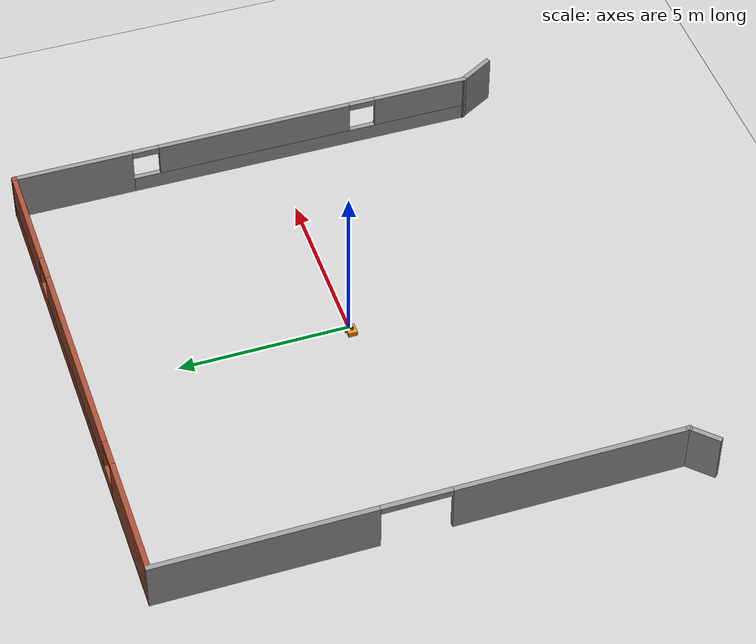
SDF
<sdf version="1.7">
 <world name="default">
  <light name="sun" type="directional">
   <pose>0 0 10 0 -0 0</pose>
   <diffuse>0.8 0.8 0.8 1</diffuse>
   <specular>0.2 0.2 0.2 1</specular>
   <attenuation>
    <range>1000</range>
    <constant>0.9</constant>
    <linear>0.01</linear>
    <quadratic>0.001</quadratic>
   </attenuation>
   <direction>-0.5 0.1 -0.9</direction>
   <spot><inner_angle>0</inner_angle><outer_angle>0</outer_angle><falloff>0</falloff></spot>
  </light>
  <model name="ground_plane">
   <static>1</static>
   <link name="link">
    <collision name="collision">
     <geometry><plane><normal>0 0 1</normal><size>100 100</size></plane></geometry>
     <surface>
      <contact><collide_bitmask>65535</collide_bitmask></contact>
      <friction><ode><mu>100</mu><mu2>50</mu2></ode></friction>
     </surface>
    </collision>
    <visual name="visual">
     <cast_shadows>0</cast_shadows>
     <geometry><plane><normal>0 0 1</normal><size>100 100</size></plane></geometry>
     <material>
      <script><uri>file://media/materials/scripts/gazebo.material</uri><name>Gazebo/Grey</name></script>
     </material>
    </visual>
   </link>
  </model>
  <gravity>0 0 -9.8</gravity>
  <magnetic_field>6e-06 2.3e-05 -4.2e-05</magnetic_field>
  <atmosphere type="adiabatic"/>
  <physics type="ode">
   <max_step_size>0.001</max_step_size>
   <real_time_factor>1</real_time_factor>
   <real_time_update_rate>1000</real_time_update_rate>
  </physics>
  <scene><ambient>0.4 0.4 0.4 1</ambient><background>0.7 0.7 0.7 1</background><shadows>1</shadows></scene>
  <spherical_coordinates>
   <surface_model>EARTH_WGS84</surface_model>
   <latitude_deg>0</latitude_deg>
   <longitude_deg>0</longitude_deg>
   <elevation>0</elevation>
   <heading_deg>0</heading_deg>
  </spherical_coordinates>
  <audio><device>default</device></audio>
  <model name="my_bot">
   <link name="base_link">
    <inertial>
     <pose>-0.067475 0 0.081098 0 -0 0</pose>
     <mass>0.61</mass>
     <inertia>
      <ixx>0.00561003</ixx>
      <ixy>0</ixy>
      <ixz>0.000453811</ixz>
      <iyy>0.00760348</iyy>
      <iyz>0</iyz>
      <izz>0.00797093</izz>
     </inertia>
    </inertial>
    <collision name="base_link_fixed_joint_lump__chassis_collision">
     <pose>-0.0585 0 0.059 0 -0 0</pose>
     <geometry><box><size>0.335 0.265 0.138</size></box></geometry>
    </collision>
    <collision name="base_link_fixed_joint_lump__caster_wheel_collision_1">
     <pose>-0.151 0 -0.023 0 -0 0</pose>
     <geometry><sphere><radius>0.01</radius></sphere></geometry>
     <surface><friction><ode><mu>0.001</mu><mu2>0.001</mu2></ode></friction></surface>
    </collision>
    <collision name="base_link_fixed_joint_lump__laser_frame_collision_2">
     <pose>-0.104 0 0.202 0 -0 0</pose>
     <geometry><cylinder><length>0.04</length><radius>0.05</radius></cylinder></geometry>
    </collision>
    <visual name="base_link_fixed_joint_lump__chassis_visual">
     <pose>-0.0585 0 0.059 0 -0 0</pose>
     <geometry><box><size>0.335 0.265 0.138</size></box></geometry>
     <material>
      <script><name>Gazebo/Orange</name><uri>file://media/materials/scripts/gazebo.material</uri></script>
     </material>
    </visual>
    <visual name="base_link_fixed_joint_lump__camera_link_visual_1">
     <pose>0.05 0 0.171 0 0.18 0</pose>
     <geometry><box><size>0.01 0.03 0.03</size></box></geometry>
     <material>
      <script><name>Gazebo/Black</name><uri>file://media/materials/scripts/gazebo.material</uri></script>
     </material>
    </visual>
    <visual name="base_link_fixed_joint_lump__camera_link_visual_2">
     <pose>0.041049 0 0.121808 0 0.18 0</pose>
     <geometry><cylinder><length>0.1</length><radius>0.002</radius></cylinder></geometry>
     <material>
      <script><name>Gazebo/Black</name><uri>file://media/materials/scripts/gazebo.material</uri></script>
     </material>
    </visual>
    <visual name="base_link_fixed_joint_lump__caster_wheel_visual_3">
     <pose>-0.151 0 -0.023 0 -0 0</pose>
     <geometry><sphere><radius>0.01</radius></sphere></geometry>
     <material>
      <script><name>Gazebo/White</name><uri>file://media/materials/scripts/gazebo.material</uri></script>
     </material>
    </visual>
    <visual name="base_link_fixed_joint_lump__face_link_visual_4">
     <pose>0.109 0.05 0.069 3.14159 1.57079 3.14159</pose>
     <geometry><cylinder><length>0.002</length><radius>0.01</radius></cylinder></geometry>
     <material>
      <script><name>Gazebo/Black</name><uri>file://media/materials/scripts/gazebo.material</uri></script>
     </material>
    </visual>
    <visual name="base_link_fixed_joint_lump__face_link_visual_5">
     <pose>0.109 -0.05 0.069 3.14159 1.57079 3.14159</pose>
     <geometry><cylinder><length>0.002</length><radius>0.01</radius></cylinder></geometry>
     <material>
      <script><name>Gazebo/Black</name><uri>file://media/materials/scripts/gazebo.material</uri></script>
     </material>
    </visual>
    <visual name="base_link_fixed_joint_lump__face_link_visual_6">
     <pose>0.098 0 0.059 0 1.5 0</pose>
     <geometry><cylinder><length>0.02</length><radius>0.05</radius></cylinder></geometry>
     <material>
      <script><name>Gazebo/Black</name><uri>file://media/materials/scripts/gazebo.material</uri></script>
     </material>
    </visual>
    <visual name="base_link_fixed_joint_lump__laser_frame_visual_7">
     <pose>-0.104 0 0.202 0 -0 0</pose>
     <geometry><cylinder><length>0.04</length><radius>0.05</radius></cylinder></geometry>
     <material>
      <script><name>Gazebo/Black</name><uri>file://media/materials/scripts/gazebo.material</uri></script>
     </material>
    </visual>
    <visual name="base_link_fixed_joint_lump__laser_frame_visual_8">
     <pose>-0.104 0 0.152 0 -0 0</pose>
     <geometry><cylinder><length>0.1</length><radius>0.01</radius></cylinder></geometry>
     <material>
      <script><name>Gazebo/Black</name><uri>file://media/materials/scripts/gazebo.material</uri></script>
     </material>
    </visual>
    <sensor name="camera" type="camera">
     <visualize>1</visualize>
     <update_rate>10</update_rate>
     <camera>
      <horizontal_fov>1.089</horizontal_fov>
      <image><format>R8G8B8</format><width>640</width><height>480</height></image>
      <clip><near>0.05</near><far>8</far></clip>
     </camera>
     <plugin name="camera_controller" filename="libgazebo_ros_camera.so">
      <frame_name>camera_link_optical</frame_name>
     </plugin>
     <pose>0.05 0 0.171 0 0.18 0</pose>
    </sensor>
    <sensor name="laser" type="ray">
     <visualize>0</visualize>
     <update_rate>10</update_rate>
     <ray>
      <scan>
       <horizontal>
        <samples>360</samples>
        <min_angle>-3.14</min_angle>
        <max_angle>3.14</max_angle>
        <resolution>1</resolution>
       </horizontal>
       <vertical><samples>1</samples><min_angle>0</min_angle><max_angle>0</max_angle></vertical>
      </scan>
      <range><min>0.3</min><max>12</max></range>
     </ray>
     <plugin name="laser_controller" filename="libgazebo_ros_ray_sensor.so">
      <ros><argument>~/out:=scan</argument></ros>
      <output_type>sensor_msgs/LaserScan</output_type>
      <frame_name>laser_frame</frame_name>
     </plugin>
     <pose>-0.104 0 0.202 0 -0 0</pose>
    </sensor>
   </link>
   <joint name="left_wheel_joint" type="revolute">
    <pose relative_to="base_link">0 0.1485 0 -1.5708 0 0</pose>
    <parent>base_link</parent>
    <child>left_wheel</child>
    <axis>
     <xyz>0 0 1</xyz>
     <limit><lower>-1e+16</lower><upper>1e+16</upper></limit>
     <dynamics><spring_reference>0</spring_reference><spring_stiffness>0</spring_stiffness></dynamics>
    </axis>
   </joint>
   <link name="left_wheel">
    <pose relative_to="left_wheel_joint">0 0 0 0 -0 0</pose>
    <inertial>
     <mass>0.05</mass>
     <inertia>
      <ixx>1.64292e-05</ixx>
      <ixy>0</ixy>
      <ixz>0</ixz>
      <iyy>1.64292e-05</iyy>
      <iyz>0</iyz>
      <izz>2.7225e-05</izz>
     </inertia>
    </inertial>
    <collision name="left_wheel_collision">
     <geometry><sphere><radius>0.033</radius></sphere></geometry>
    </collision>
    <visual name="left_wheel_visual">
     <geometry><cylinder><length>0.026</length><radius>0.033</radius></cylinder></geometry>
     <material>
      <script><name>Gazebo/Blue</name><uri>file://media/materials/scripts/gazebo.material</uri></script>
     </material>
    </visual>
   </link>
   <joint name="right_wheel_joint" type="revolute">
    <pose relative_to="base_link">0 -0.1485 0 1.5708 -0 0</pose>
    <parent>base_link</parent>
    <child>right_wheel</child>
    <axis>
     <xyz>0 0 -1</xyz>
     <limit><lower>-1e+16</lower><upper>1e+16</upper></limit>
     <dynamics><spring_reference>0</spring_reference><spring_stiffness>0</spring_stiffness></dynamics>
    </axis>
   </joint>
   <link name="right_wheel">
    <pose relative_to="right_wheel_joint">0 0 0 0 -0 0</pose>
    <inertial>
     <mass>0.05</mass>
     <inertia>
      <ixx>1.64292e-05</ixx>
      <ixy>0</ixy>
      <ixz>0</ixz>
      <iyy>1.64292e-05</iyy>
      <iyz>0</iyz>
      <izz>2.7225e-05</izz>
     </inertia>
    </inertial>
    <collision name="right_wheel_collision">
     <geometry><sphere><radius>0.033</radius></sphere></geometry>
    </collision>
    <visual name="right_wheel_visual">
     <geometry><cylinder><length>0.026</length><radius>0.033</radius></cylinder></geometry>
     <material>
      <script><name>Gazebo/Blue</name><uri>file://media/materials/scripts/gazebo.material</uri></script>
     </material>
    </visual>
   </link>
   <static>0</static>
   <plugin name="gazebo_ros2_control" filename="libgazebo_ros2_control.so">
    <parameters>/home/mustafa/dev_ws/install/articubot_one/share/articubot_one/config/my_controllers.yaml</parameters>
    <parameters>/home/mustafa/dev_ws/install/articubot_one/share/articubot_one/config/gaz_ros2_ctl_use_sim.yaml</parameters>
   </plugin>
   <pose>-0.156814 -0.000114 0.032997 1.6e-05 1.8e-05 0.006149</pose>
  </model>
  <model name="port_wall">
   <pose>-0.16536 0.088957 0 0 -0 0</pose>
   <link name="Wall_10">
    <pose>-7.39764 0.316043 0 0 -0 1.5708</pose>
    <visual name="Wall_10_Visual_0">
     <pose>-4.13733 0 0.75 0 -0 0</pose>
     <geometry><box><size>6.72534 0.15 1.5</size></box></geometry>
     <material>
      <script><uri>file://media/materials/scripts/gazebo.material</uri><name>Gazebo/Grey</name></script>
      <ambient>1 1 1 1</ambient>
     </material>
     <meta><layer>0</layer></meta>
    </visual>
    <collision name="Wall_10_Collision_0">
     <geometry><box><size>6.72534 0.15 1.5</size></box></geometry>
     <pose>-4.13733 0 0.75 0 -0 0</pose>
    </collision>
    <visual name="Wall_10_Visual_1">
     <pose>4.36267 0 0.75 0 -0 0</pose>
     <geometry><box><size>6.27466 0.15 1.5</size></box></geometry>
     <material>
      <script><uri>file://media/materials/scripts/gazebo.material</uri><name>Gazebo/Grey</name></script>
      <ambient>1 1 1 1</ambient>
     </material>
     <meta><layer>0</layer></meta>
    </visual>
    <collision name="Wall_10_Collision_1">
     <geometry><box><size>6.27466 0.15 1.5</size></box></geometry>
     <pose>4.36267 0 0.75 0 -0 0</pose>
    </collision>
    <visual name="Wall_10_Visual_2">
     <pose>0.225342 0 1.4 0 -0 0</pose>
     <geometry><box><size>2 0.15 0.2</size></box></geometry>
     <material>
      <script><uri>file://media/materials/scripts/gazebo.material</uri><name>Gazebo/Grey</name></script>
      <ambient>1 1 1 1</ambient>
     </material>
     <meta><layer>0</layer></meta>
    </visual>
    <collision name="Wall_10_Collision_2">
     <geometry><box><size>2 0.15 0.2</size></box></geometry>
     <pose>0.225342 0 1.4 0 -0 0</pose>
    </collision>
   </link>
   <link name="Wall_12">
    <pose>0.02736 7.74104 0 0 -0 0</pose>
    <visual name="Wall_12_Visual_0">
     <pose>-5.67202 0 0.75 0 -0 0</pose>
     <geometry><box><size>3.65596 0.15 1.5</size></box></geometry>
     <material>
      <script><uri>file://media/materials/scripts/gazebo.material</uri><name>Gazebo/Bricks</name></script>
      <ambient>1 1 1 1</ambient>
     </material>
     <meta><layer>0</layer></meta>
    </visual>
    <collision name="Wall_12_Collision_0">
     <geometry><box><size>3.65596 0.15 1.5</size></box></geometry>
     <pose>-5.67202 0 0.75 0 -0 0</pose>
    </collision>
    <visual name="Wall_12_Visual_1">
     <pose>1.82798 0 0.25 0 -0 0</pose>
     <geometry><box><size>11.344 0.15 0.5</size></box></geometry>
     <material>
      <script><uri>file://media/materials/scripts/gazebo.material</uri><name>Gazebo/Bricks</name></script>
      <ambient>1 1 1 1</ambient>
     </material>
     <meta><layer>0</layer></meta>
    </visual>
    <collision name="Wall_12_Collision_1">
     <geometry><box><size>11.344 0.15 0.5</size></box></geometry>
     <pose>1.82798 0 0.25 0 -0 0</pose>
    </collision>
    <visual name="Wall_12_Visual_2">
     <pose>0.109836 0 1 0 -0 0</pose>
     <geometry><box><size>6.30775 0.15 1</size></box></geometry>
     <material>
      <script><uri>file://media/materials/scripts/gazebo.material</uri><name>Gazebo/Bricks</name></script>
      <ambient>1 1 1 1</ambient>
     </material>
     <meta><layer>0</layer></meta>
    </visual>
    <collision name="Wall_12_Collision_2">
     <geometry><box><size>6.30775 0.15 1</size></box></geometry>
     <pose>0.109836 0 1 0 -0 0</pose>
    </collision>
    <visual name="Wall_12_Visual_3">
     <pose>5.78186 0 1 0 -0 0</pose>
     <geometry><box><size>3.43629 0.15 1</size></box></geometry>
     <material>
      <script><uri>file://media/materials/scripts/gazebo.material</uri><name>Gazebo/Bricks</name></script>
      <ambient>1 1 1 1</ambient>
     </material>
     <meta><layer>0</layer></meta>
    </visual>
    <collision name="Wall_12_Collision_3">
     <geometry><box><size>3.43629 0.15 1</size></box></geometry>
     <pose>5.78186 0 1 0 -0 0</pose>
    </collision>
    <visual name="Wall_12_Visual_4">
     <pose>-3.44404 0 1.4 0 -0 0</pose>
     <geometry><box><size>0.8 0.15 0.2</size></box></geometry>
     <material>
      <script><uri>file://media/materials/scripts/gazebo.material</uri><name>Gazebo/Bricks</name></script>
      <ambient>1 1 1 1</ambient>
     </material>
     <meta><layer>0</layer></meta>
    </visual>
    <collision name="Wall_12_Collision_4">
     <geometry><box><size>0.8 0.15 0.2</size></box></geometry>
     <pose>-3.44404 0 1.4 0 -0 0</pose>
    </collision>
    <visual name="Wall_12_Visual_5">
     <pose>3.66371 0 1.4 0 -0 0</pose>
     <geometry><box><size>0.8 0.15 0.2</size></box></geometry>
     <material>
      <script><uri>file://media/materials/scripts/gazebo.material</uri><name>Gazebo/Bricks</name></script>
      <ambient>1 1 1 1</ambient>
     </material>
     <meta><layer>0</layer></meta>
    </visual>
    <collision name="Wall_12_Collision_5">
     <geometry><box><size>0.8 0.15 0.2</size></box></geometry>
     <pose>3.66371 0 1.4 0 -0 0</pose>
    </collision>
   </link>
   <link name="Wall_14">
    <pose>7.45236 0.816043 0 0 -0 -1.5708</pose>
    <visual name="Wall_14_Visual_0">
     <pose>-5.19594 0 0.75 0 -0 0</pose>
     <geometry><box><size>3.60812 0.15 1.5</size></box></geometry>
     <material>
      <script><uri>file://media/materials/scripts/gazebo.material</uri><name>Gazebo/Grey</name></script>
      <ambient>1 1 1 1</ambient>
     </material>
     <meta><layer>0</layer></meta>
    </visual>
    <collision name="Wall_14_Collision_0">
     <geometry><box><size>3.60812 0.15 1.5</size></box></geometry>
     <pose>-5.19594 0 0.75 0 -0 0</pose>
    </collision>
    <visual name="Wall_14_Visual_1">
     <pose>1.80406 0 0.25 0 -0 0</pose>
     <geometry><box><size>10.3919 0.15 0.5</size></box></geometry>
     <material>
      <script><uri>file://media/materials/scripts/gazebo.material</uri><name>Gazebo/Grey</name></script>
      <ambient>1 1 1 1</ambient>
     </material>
     <meta><layer>0</layer></meta>
    </visual>
    <collision name="Wall_14_Collision_1">
     <geometry><box><size>10.3919 0.15 0.5</size></box></geometry>
     <pose>1.80406 0 0.25 0 -0 0</pose>
    </collision>
    <visual name="Wall_14_Visual_2">
     <pose>0.350272 0 1 0 -0 0</pose>
     <geometry><box><size>5.88431 0.15 1</size></box></geometry>
     <material>
      <script><uri>file://media/materials/scripts/gazebo.material</uri><name>Gazebo/Grey</name></script>
      <ambient>1 1 1 1</ambient>
     </material>
     <meta><layer>0</layer></meta>
    </visual>
    <collision name="Wall_14_Collision_2">
     <geometry><box><size>5.88431 0.15 1</size></box></geometry>
     <pose>0.350272 0 1 0 -0 0</pose>
    </collision>
    <visual name="Wall_14_Visual_3">
     <pose>5.54621 0 1 0 -0 0</pose>
     <geometry><box><size>2.90757 0.15 1</size></box></geometry>
     <material>
      <script><uri>file://media/materials/scripts/gazebo.material</uri><name>Gazebo/Grey</name></script>
      <ambient>1 1 1 1</ambient>
     </material>
     <meta><layer>0</layer></meta>
    </visual>
    <collision name="Wall_14_Collision_3">
     <geometry><box><size>2.90757 0.15 1</size></box></geometry>
     <pose>5.54621 0 1 0 -0 0</pose>
    </collision>
    <visual name="Wall_14_Visual_4">
     <pose>-2.99188 0 1.4 0 -0 0</pose>
     <geometry><box><size>0.8 0.15 0.2</size></box></geometry>
     <material>
      <script><uri>file://media/materials/scripts/gazebo.material</uri><name>Gazebo/Grey</name></script>
      <ambient>1 1 1 1</ambient>
     </material>
     <meta><layer>0</layer></meta>
    </visual>
    <collision name="Wall_14_Collision_4">
     <geometry><box><size>0.8 0.15 0.2</size></box></geometry>
     <pose>-2.99188 0 1.4 0 -0 0</pose>
    </collision>
    <visual name="Wall_14_Visual_5">
     <pose>3.69243 0 1.4 0 -0 0</pose>
     <geometry><box><size>0.8 0.15 0.2</size></box></geometry>
     <material>
      <script><uri>file://media/materials/scripts/gazebo.material</uri><name>Gazebo/Grey</name></script>
      <ambient>1 1 1 1</ambient>
     </material>
     <meta><layer>0</layer></meta>
    </visual>
    <collision name="Wall_14_Collision_5">
     <geometry><box><size>0.8 0.15 0.2</size></box></geometry>
     <pose>3.69243 0 1.4 0 -0 0</pose>
    </collision>
   </link>
   <link name="Wall_16">
    <collision name="Wall_16_Collision">
     <geometry><box><size>1.25 0.15 1.5</size></box></geometry>
     <pose>0 0 0.75 0 -0 0</pose>
    </collision>
    <visual name="Wall_16_Visual">
     <pose>0 0 0.75 0 -0 0</pose>
     <geometry><box><size>1.25 0.15 1.5</size></box></geometry>
     <material>
      <script><uri>file://media/materials/scripts/gazebo.material</uri><name>Gazebo/Grey</name></script>
      <ambient>1 1 1 1</ambient>
     </material>
     <meta><layer>0</layer></meta>
    </visual>
    <pose>7.72736 -6.58546 0 0 -0 -1.04737</pose>
   </link>
   <link name="Wall_18">
    <collision name="Wall_18_Collision">
     <geometry><box><size>1 0.15 1.5</size></box></geometry>
     <pose>0 0 0.75 0 -0 0</pose>
    </collision>
    <visual name="Wall_18_Visual">
     <pose>0 0 0.75 0 -0 0</pose>
     <geometry><box><size>1 0.15 1.5</size></box></geometry>
     <material>
      <script><uri>file://media/materials/scripts/gazebo.material</uri><name>Gazebo/Grey</name></script>
      <ambient>1 1 1 1</ambient>
     </material>
     <meta><layer>0</layer></meta>
    </visual>
    <pose>-7.69814 -7.40946 0 0 -0 -2.35619</pose>
   </link>
   <static>1</static>
  </model>
 </world>
</sdf>
